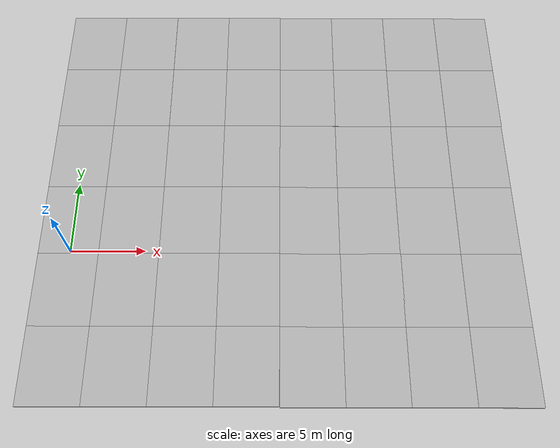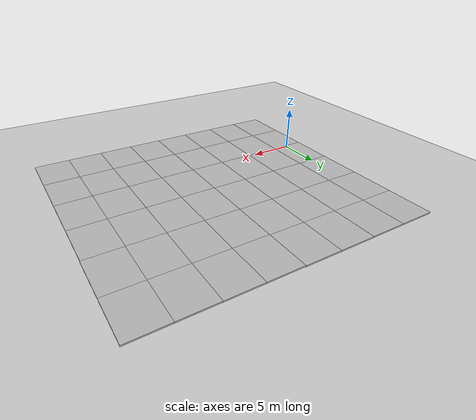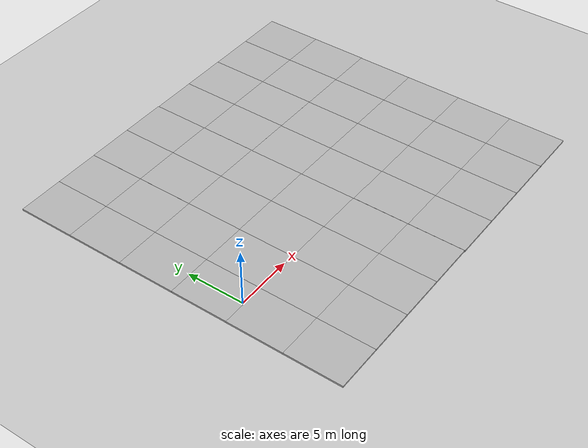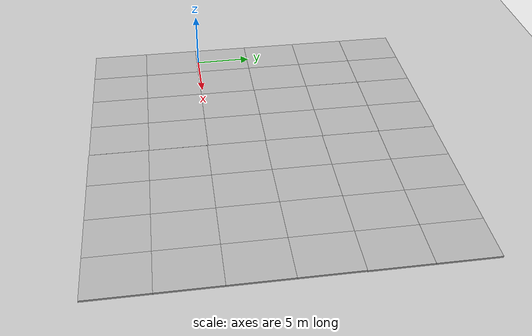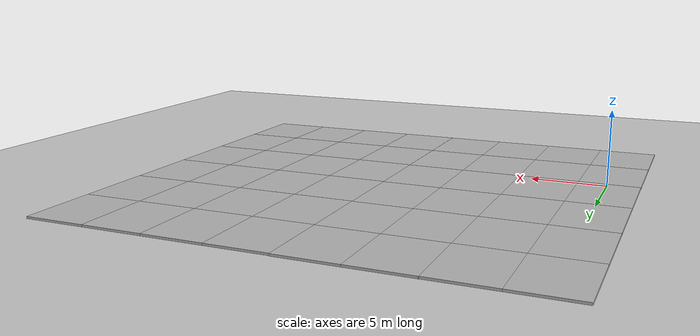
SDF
<sdf version="1.6">
 <world name="default">
  <physics name="1ms" type="ignored">
   <max_step_size>0.001</max_step_size>
   <real_time_factor>1</real_time_factor>
   <real_time_update_rate>1000</real_time_update_rate>
  </physics>
  <magnetic_field>6e-06 2.3e-05 -4.2e-05</magnetic_field>
  <atmosphere type="adiabatic"/>
  <scene><ambient>0.4 0.4 0.4 1</ambient><background>0.7 0.7 0.7 1</background><shadows>false</shadows></scene>
  <light name="sun" type="directional">
   <pose>0 0 10 0 -0 0</pose>
   <cast_shadows>false</cast_shadows>
   <intensity>1</intensity>
   <direction>-0.5 0.1 -0.9</direction>
   <diffuse>0.8 0.8 0.8 1</diffuse>
   <specular>0.2 0.2 0.2 1</specular>
   <attenuation>
    <range>1000</range>
    <linear>0.01</linear>
    <constant>0.90000000000000002</constant>
    <quadratic>0.001</quadratic>
   </attenuation>
   <spot><inner_angle>0</inner_angle><outer_angle>0</outer_angle><falloff>0</falloff></spot>
  </light>
  <model name="ground_plane">
   <static>1</static>
   <link name="link">
    <collision name="collision">
     <geometry><plane><normal>0 0 1</normal><size>100 100</size></plane></geometry>
     <surface><friction><ode><mu>100</mu><mu2>50</mu2></ode></friction></surface>
    </collision>
    <visual name="visual">
     <cast_shadows>0</cast_shadows>
     <geometry><plane><normal>0 0 1</normal><size>100 100</size></plane></geometry>
     <material>
      <script><uri>file://media/materials/scripts/gazebo.material</uri><name>Gazebo/Grey</name></script>
     </material>
    </visual>
   </link>
  </model>
  <gravity>0 0 -9.8</gravity>
  <magnetic_field>6e-06 2.3e-05 -4.2e-05</magnetic_field>
  <atmosphere type="adiabatic"/>
  <physics name="default_physics" default="0" type="ode">
   <max_step_size>0.001</max_step_size>
   <real_time_factor>1</real_time_factor>
   <real_time_update_rate>1000</real_time_update_rate>
  </physics>
  <scene><ambient>0.4 0.4 0.4 1</ambient><background>0.7 0.7 0.7 1</background><shadows>1</shadows></scene>
  <spherical_coordinates>
   <surface_model>EARTH_WGS84</surface_model>
   <latitude_deg>0</latitude_deg>
   <longitude_deg>0</longitude_deg>
   <elevation>0</elevation>
   <heading_deg>0</heading_deg>
  </spherical_coordinates>
  <model name="mud_box">
   <static>1</static>
   <link name="link">
    <collision name="collision"><geometry><box><size>8 10 0.2</size></box></geometry></collision>
    <visual name="visual_1">
     <pose>-2 2.5 0 0 -0 0</pose>
     <cast_shadows>0</cast_shadows>
     <geometry><box><size>4 5 0.2</size></box></geometry>
     <material>
      <script>
       <uri>model://mud_box/materials/scripts</uri>
       <uri>model://mud_box/materials/textures</uri>
       <name>vrc/mud</name>
      </script>
     </material>
    </visual>
    <visual name="visual_2">
     <pose>2 2.5 0 0 -0 0</pose>
     <cast_shadows>0</cast_shadows>
     <geometry><box><size>4 5 0.2</size></box></geometry>
     <material>
      <script>
       <uri>model://mud_box/materials/scripts</uri>
       <uri>model://mud_box/materials/textures</uri>
       <name>vrc/mud</name>
      </script>
     </material>
    </visual>
    <visual name="visual_3">
     <pose>2 -2.5 0 0 -0 0</pose>
     <cast_shadows>0</cast_shadows>
     <geometry><box><size>4 5 0.2</size></box></geometry>
     <material>
      <script>
       <uri>model://mud_box/materials/scripts</uri>
       <uri>model://mud_box/materials/textures</uri>
       <name>vrc/mud</name>
      </script>
     </material>
    </visual>
    <visual name="visual_4">
     <pose>-2 -2.5 0 0 -0 0</pose>
     <cast_shadows>0</cast_shadows>
     <geometry><box><size>4 5 0.2</size></box></geometry>
     <material>
      <script>
       <uri>model://mud_box/materials/scripts</uri>
       <uri>model://mud_box/materials/textures</uri>
       <name>vrc/mud</name>
      </script>
     </material>
    </visual>
   </link>
   <pose>9.86832 14.8407 0 0 -0 0</pose>
  </model>
  <model name="mud_box_0">
   <static>1</static>
   <link name="link">
    <collision name="collision"><geometry><box><size>8 10 0.2</size></box></geometry></collision>
    <visual name="visual_1">
     <pose>-2 2.5 0 0 -0 0</pose>
     <cast_shadows>0</cast_shadows>
     <geometry><box><size>4 5 0.2</size></box></geometry>
     <material>
      <script>
       <uri>model://mud_box/materials/scripts</uri>
       <uri>model://mud_box/materials/textures</uri>
       <name>vrc/mud</name>
      </script>
     </material>
    </visual>
    <visual name="visual_2">
     <pose>2 2.5 0 0 -0 0</pose>
     <cast_shadows>0</cast_shadows>
     <geometry><box><size>4 5 0.2</size></box></geometry>
     <material>
      <script>
       <uri>model://mud_box/materials/scripts</uri>
       <uri>model://mud_box/materials/textures</uri>
       <name>vrc/mud</name>
      </script>
     </material>
    </visual>
    <visual name="visual_3">
     <pose>2 -2.5 0 0 -0 0</pose>
     <cast_shadows>0</cast_shadows>
     <geometry><box><size>4 5 0.2</size></box></geometry>
     <material>
      <script>
       <uri>model://mud_box/materials/scripts</uri>
       <uri>model://mud_box/materials/textures</uri>
       <name>vrc/mud</name>
      </script>
     </material>
    </visual>
    <visual name="visual_4">
     <pose>-2 -2.5 0 0 -0 0</pose>
     <cast_shadows>0</cast_shadows>
     <geometry><box><size>4 5 0.2</size></box></geometry>
     <material>
      <script>
       <uri>model://mud_box/materials/scripts</uri>
       <uri>model://mud_box/materials/textures</uri>
       <name>vrc/mud</name>
      </script>
     </material>
    </visual>
   </link>
   <pose>1.86767 4.83104 0 0 -0 0</pose>
  </model>
  <model name="mud_box_1">
   <static>1</static>
   <link name="link">
    <collision name="collision"><geometry><box><size>8 10 0.2</size></box></geometry></collision>
    <visual name="visual_1">
     <pose>-2 2.5 0 0 -0 0</pose>
     <cast_shadows>0</cast_shadows>
     <geometry><box><size>4 5 0.2</size></box></geometry>
     <material>
      <script>
       <uri>model://mud_box/materials/scripts</uri>
       <uri>model://mud_box/materials/textures</uri>
       <name>vrc/mud</name>
      </script>
     </material>
    </visual>
    <visual name="visual_2">
     <pose>2 2.5 0 0 -0 0</pose>
     <cast_shadows>0</cast_shadows>
     <geometry><box><size>4 5 0.2</size></box></geometry>
     <material>
      <script>
       <uri>model://mud_box/materials/scripts</uri>
       <uri>model://mud_box/materials/textures</uri>
       <name>vrc/mud</name>
      </script>
     </material>
    </visual>
    <visual name="visual_3">
     <pose>2 -2.5 0 0 -0 0</pose>
     <cast_shadows>0</cast_shadows>
     <geometry><box><size>4 5 0.2</size></box></geometry>
     <material>
      <script>
       <uri>model://mud_box/materials/scripts</uri>
       <uri>model://mud_box/materials/textures</uri>
       <name>vrc/mud</name>
      </script>
     </material>
    </visual>
    <visual name="visual_4">
     <pose>-2 -2.5 0 0 -0 0</pose>
     <cast_shadows>0</cast_shadows>
     <geometry><box><size>4 5 0.2</size></box></geometry>
     <material>
      <script>
       <uri>model://mud_box/materials/scripts</uri>
       <uri>model://mud_box/materials/textures</uri>
       <name>vrc/mud</name>
      </script>
     </material>
    </visual>
   </link>
   <pose>25.8304 -5.18145 0 0 -0 0</pose>
  </model>
  <model name="mud_box_2">
   <static>1</static>
   <link name="link">
    <collision name="collision"><geometry><box><size>8 10 0.2</size></box></geometry></collision>
    <visual name="visual_1">
     <pose>-2 2.5 0 0 -0 0</pose>
     <cast_shadows>0</cast_shadows>
     <geometry><box><size>4 5 0.2</size></box></geometry>
     <material>
      <script>
       <uri>model://mud_box/materials/scripts</uri>
       <uri>model://mud_box/materials/textures</uri>
       <name>vrc/mud</name>
      </script>
     </material>
    </visual>
    <visual name="visual_2">
     <pose>2 2.5 0 0 -0 0</pose>
     <cast_shadows>0</cast_shadows>
     <geometry><box><size>4 5 0.2</size></box></geometry>
     <material>
      <script>
       <uri>model://mud_box/materials/scripts</uri>
       <uri>model://mud_box/materials/textures</uri>
       <name>vrc/mud</name>
      </script>
     </material>
    </visual>
    <visual name="visual_3">
     <pose>2 -2.5 0 0 -0 0</pose>
     <cast_shadows>0</cast_shadows>
     <geometry><box><size>4 5 0.2</size></box></geometry>
     <material>
      <script>
       <uri>model://mud_box/materials/scripts</uri>
       <uri>model://mud_box/materials/textures</uri>
       <name>vrc/mud</name>
      </script>
     </material>
    </visual>
    <visual name="visual_4">
     <pose>-2 -2.5 0 0 -0 0</pose>
     <cast_shadows>0</cast_shadows>
     <geometry><box><size>4 5 0.2</size></box></geometry>
     <material>
      <script>
       <uri>model://mud_box/materials/scripts</uri>
       <uri>model://mud_box/materials/textures</uri>
       <name>vrc/mud</name>
      </script>
     </material>
    </visual>
   </link>
   <pose>1.85975 -5.14192 0 0 -0 0</pose>
  </model>
  <model name="mud_box_0_clone">
   <static>1</static>
   <link name="link">
    <collision name="collision"><geometry><box><size>8 10 0.2</size></box></geometry></collision>
    <visual name="visual_1">
     <pose>-2 2.5 0 0 -0 0</pose>
     <cast_shadows>0</cast_shadows>
     <geometry><box><size>4 5 0.2</size></box></geometry>
     <material>
      <script>
       <uri>model://mud_box/materials/scripts</uri>
       <uri>model://mud_box/materials/textures</uri>
       <name>vrc/mud</name>
      </script>
     </material>
    </visual>
    <visual name="visual_2">
     <pose>2 2.5 0 0 -0 0</pose>
     <cast_shadows>0</cast_shadows>
     <geometry><box><size>4 5 0.2</size></box></geometry>
     <material>
      <script>
       <uri>model://mud_box/materials/scripts</uri>
       <uri>model://mud_box/materials/textures</uri>
       <name>vrc/mud</name>
      </script>
     </material>
    </visual>
    <visual name="visual_3">
     <pose>2 -2.5 0 0 -0 0</pose>
     <cast_shadows>0</cast_shadows>
     <geometry><box><size>4 5 0.2</size></box></geometry>
     <material>
      <script>
       <uri>model://mud_box/materials/scripts</uri>
       <uri>model://mud_box/materials/textures</uri>
       <name>vrc/mud</name>
      </script>
     </material>
    </visual>
    <visual name="visual_4">
     <pose>-2 -2.5 0 0 -0 0</pose>
     <cast_shadows>0</cast_shadows>
     <geometry><box><size>4 5 0.2</size></box></geometry>
     <material>
      <script>
       <uri>model://mud_box/materials/scripts</uri>
       <uri>model://mud_box/materials/textures</uri>
       <name>vrc/mud</name>
      </script>
     </material>
    </visual>
   </link>
   <pose>9.85757 -5.14216 0 0 -0 0</pose>
  </model>
  <model name="mud_box_0_clone_clone">
   <static>1</static>
   <link name="link">
    <collision name="collision"><geometry><box><size>8 10 0.2</size></box></geometry></collision>
    <visual name="visual_1">
     <pose>-2 2.5 0 0 -0 0</pose>
     <cast_shadows>0</cast_shadows>
     <geometry><box><size>4 5 0.2</size></box></geometry>
     <material>
      <script>
       <uri>model://mud_box/materials/scripts</uri>
       <uri>model://mud_box/materials/textures</uri>
       <name>vrc/mud</name>
      </script>
     </material>
    </visual>
    <visual name="visual_2">
     <pose>2 2.5 0 0 -0 0</pose>
     <cast_shadows>0</cast_shadows>
     <geometry><box><size>4 5 0.2</size></box></geometry>
     <material>
      <script>
       <uri>model://mud_box/materials/scripts</uri>
       <uri>model://mud_box/materials/textures</uri>
       <name>vrc/mud</name>
      </script>
     </material>
    </visual>
    <visual name="visual_3">
     <pose>2 -2.5 0 0 -0 0</pose>
     <cast_shadows>0</cast_shadows>
     <geometry><box><size>4 5 0.2</size></box></geometry>
     <material>
      <script>
       <uri>model://mud_box/materials/scripts</uri>
       <uri>model://mud_box/materials/textures</uri>
       <name>vrc/mud</name>
      </script>
     </material>
    </visual>
    <visual name="visual_4">
     <pose>-2 -2.5 0 0 -0 0</pose>
     <cast_shadows>0</cast_shadows>
     <geometry><box><size>4 5 0.2</size></box></geometry>
     <material>
      <script>
       <uri>model://mud_box/materials/scripts</uri>
       <uri>model://mud_box/materials/textures</uri>
       <name>vrc/mud</name>
      </script>
     </material>
    </visual>
   </link>
   <pose>17.8643 -5.17973 0 0 -0 0</pose>
  </model>
  <model name="mud_box_0_clone_clone_0">
   <static>1</static>
   <link name="link">
    <collision name="collision"><geometry><box><size>8 10 0.2</size></box></geometry></collision>
    <visual name="visual_1">
     <pose>-2 2.5 0 0 -0 0</pose>
     <cast_shadows>0</cast_shadows>
     <geometry><box><size>4 5 0.2</size></box></geometry>
     <material>
      <script>
       <uri>model://mud_box/materials/scripts</uri>
       <uri>model://mud_box/materials/textures</uri>
       <name>vrc/mud</name>
      </script>
     </material>
    </visual>
    <visual name="visual_2">
     <pose>2 2.5 0 0 -0 0</pose>
     <cast_shadows>0</cast_shadows>
     <geometry><box><size>4 5 0.2</size></box></geometry>
     <material>
      <script>
       <uri>model://mud_box/materials/scripts</uri>
       <uri>model://mud_box/materials/textures</uri>
       <name>vrc/mud</name>
      </script>
     </material>
    </visual>
    <visual name="visual_3">
     <pose>2 -2.5 0 0 -0 0</pose>
     <cast_shadows>0</cast_shadows>
     <geometry><box><size>4 5 0.2</size></box></geometry>
     <material>
      <script>
       <uri>model://mud_box/materials/scripts</uri>
       <uri>model://mud_box/materials/textures</uri>
       <name>vrc/mud</name>
      </script>
     </material>
    </visual>
    <visual name="visual_4">
     <pose>-2 -2.5 0 0 -0 0</pose>
     <cast_shadows>0</cast_shadows>
     <geometry><box><size>4 5 0.2</size></box></geometry>
     <material>
      <script>
       <uri>model://mud_box/materials/scripts</uri>
       <uri>model://mud_box/materials/textures</uri>
       <name>vrc/mud</name>
      </script>
     </material>
    </visual>
   </link>
   <pose>17.8432 4.79546 0 0 -0 0</pose>
  </model>
  <model name="mud_box_0_clone_clone_1">
   <static>1</static>
   <link name="link">
    <collision name="collision"><geometry><box><size>8 10 0.2</size></box></geometry></collision>
    <visual name="visual_1">
     <pose>-2 2.5 0 0 -0 0</pose>
     <cast_shadows>0</cast_shadows>
     <geometry><box><size>4 5 0.2</size></box></geometry>
     <material>
      <script>
       <uri>model://mud_box/materials/scripts</uri>
       <uri>model://mud_box/materials/textures</uri>
       <name>vrc/mud</name>
      </script>
     </material>
    </visual>
    <visual name="visual_2">
     <pose>2 2.5 0 0 -0 0</pose>
     <cast_shadows>0</cast_shadows>
     <geometry><box><size>4 5 0.2</size></box></geometry>
     <material>
      <script>
       <uri>model://mud_box/materials/scripts</uri>
       <uri>model://mud_box/materials/textures</uri>
       <name>vrc/mud</name>
      </script>
     </material>
    </visual>
    <visual name="visual_3">
     <pose>2 -2.5 0 0 -0 0</pose>
     <cast_shadows>0</cast_shadows>
     <geometry><box><size>4 5 0.2</size></box></geometry>
     <material>
      <script>
       <uri>model://mud_box/materials/scripts</uri>
       <uri>model://mud_box/materials/textures</uri>
       <name>vrc/mud</name>
      </script>
     </material>
    </visual>
    <visual name="visual_4">
     <pose>-2 -2.5 0 0 -0 0</pose>
     <cast_shadows>0</cast_shadows>
     <geometry><box><size>4 5 0.2</size></box></geometry>
     <material>
      <script>
       <uri>model://mud_box/materials/scripts</uri>
       <uri>model://mud_box/materials/textures</uri>
       <name>vrc/mud</name>
      </script>
     </material>
    </visual>
   </link>
   <pose>25.8322 4.79818 0 0 -0 0</pose>
  </model>
  <model name="mud_box_0_clone_clone_2">
   <static>1</static>
   <link name="link">
    <collision name="collision"><geometry><box><size>8 10 0.2</size></box></geometry></collision>
    <visual name="visual_1">
     <pose>-2 2.5 0 0 -0 0</pose>
     <cast_shadows>0</cast_shadows>
     <geometry><box><size>4 5 0.2</size></box></geometry>
     <material>
      <script>
       <uri>model://mud_box/materials/scripts</uri>
       <uri>model://mud_box/materials/textures</uri>
       <name>vrc/mud</name>
      </script>
     </material>
    </visual>
    <visual name="visual_2">
     <pose>2 2.5 0 0 -0 0</pose>
     <cast_shadows>0</cast_shadows>
     <geometry><box><size>4 5 0.2</size></box></geometry>
     <material>
      <script>
       <uri>model://mud_box/materials/scripts</uri>
       <uri>model://mud_box/materials/textures</uri>
       <name>vrc/mud</name>
      </script>
     </material>
    </visual>
    <visual name="visual_3">
     <pose>2 -2.5 0 0 -0 0</pose>
     <cast_shadows>0</cast_shadows>
     <geometry><box><size>4 5 0.2</size></box></geometry>
     <material>
      <script>
       <uri>model://mud_box/materials/scripts</uri>
       <uri>model://mud_box/materials/textures</uri>
       <name>vrc/mud</name>
      </script>
     </material>
    </visual>
    <visual name="visual_4">
     <pose>-2 -2.5 0 0 -0 0</pose>
     <cast_shadows>0</cast_shadows>
     <geometry><box><size>4 5 0.2</size></box></geometry>
     <material>
      <script>
       <uri>model://mud_box/materials/scripts</uri>
       <uri>model://mud_box/materials/textures</uri>
       <name>vrc/mud</name>
      </script>
     </material>
    </visual>
   </link>
   <pose>1.86503 14.8262 0 0 -0 0</pose>
  </model>
  <model name="mud_box_4">
   <static>1</static>
   <link name="link">
    <collision name="collision"><geometry><box><size>8 10 0.2</size></box></geometry></collision>
    <visual name="visual_1">
     <pose>-2 2.5 0 0 -0 0</pose>
     <cast_shadows>0</cast_shadows>
     <geometry><box><size>4 5 0.2</size></box></geometry>
     <material>
      <script>
       <uri>model://mud_box/materials/scripts</uri>
       <uri>model://mud_box/materials/textures</uri>
       <name>vrc/mud</name>
      </script>
     </material>
    </visual>
    <visual name="visual_2">
     <pose>2 2.5 0 0 -0 0</pose>
     <cast_shadows>0</cast_shadows>
     <geometry><box><size>4 5 0.2</size></box></geometry>
     <material>
      <script>
       <uri>model://mud_box/materials/scripts</uri>
       <uri>model://mud_box/materials/textures</uri>
       <name>vrc/mud</name>
      </script>
     </material>
    </visual>
    <visual name="visual_3">
     <pose>2 -2.5 0 0 -0 0</pose>
     <cast_shadows>0</cast_shadows>
     <geometry><box><size>4 5 0.2</size></box></geometry>
     <material>
      <script>
       <uri>model://mud_box/materials/scripts</uri>
       <uri>model://mud_box/materials/textures</uri>
       <name>vrc/mud</name>
      </script>
     </material>
    </visual>
    <visual name="visual_4">
     <pose>-2 -2.5 0 0 -0 0</pose>
     <cast_shadows>0</cast_shadows>
     <geometry><box><size>4 5 0.2</size></box></geometry>
     <material>
      <script>
       <uri>model://mud_box/materials/scripts</uri>
       <uri>model://mud_box/materials/textures</uri>
       <name>vrc/mud</name>
      </script>
     </material>
    </visual>
   </link>
   <pose>9.86465 4.85433 0 0 -0 0</pose>
  </model>
  <model name="mud_box_3">
   <static>1</static>
   <link name="link">
    <collision name="collision"><geometry><box><size>8 10 0.2</size></box></geometry></collision>
    <visual name="visual_1">
     <pose>-2 2.5 0 0 -0 0</pose>
     <cast_shadows>0</cast_shadows>
     <geometry><box><size>4 5 0.2</size></box></geometry>
     <material>
      <script>
       <uri>model://mud_box/materials/scripts</uri>
       <uri>model://mud_box/materials/textures</uri>
       <name>vrc/mud</name>
      </script>
     </material>
    </visual>
    <visual name="visual_2">
     <pose>2 2.5 0 0 -0 0</pose>
     <cast_shadows>0</cast_shadows>
     <geometry><box><size>4 5 0.2</size></box></geometry>
     <material>
      <script>
       <uri>model://mud_box/materials/scripts</uri>
       <uri>model://mud_box/materials/textures</uri>
       <name>vrc/mud</name>
      </script>
     </material>
    </visual>
    <visual name="visual_3">
     <pose>2 -2.5 0 0 -0 0</pose>
     <cast_shadows>0</cast_shadows>
     <geometry><box><size>4 5 0.2</size></box></geometry>
     <material>
      <script>
       <uri>model://mud_box/materials/scripts</uri>
       <uri>model://mud_box/materials/textures</uri>
       <name>vrc/mud</name>
      </script>
     </material>
    </visual>
    <visual name="visual_4">
     <pose>-2 -2.5 0 0 -0 0</pose>
     <cast_shadows>0</cast_shadows>
     <geometry><box><size>4 5 0.2</size></box></geometry>
     <material>
      <script>
       <uri>model://mud_box/materials/scripts</uri>
       <uri>model://mud_box/materials/textures</uri>
       <name>vrc/mud</name>
      </script>
     </material>
    </visual>
   </link>
   <pose>17.8698 14.7961 0 0 -0 0</pose>
  </model>
  <model name="mud_box_5">
   <static>1</static>
   <link name="link">
    <collision name="collision"><geometry><box><size>8 10 0.2</size></box></geometry></collision>
    <visual name="visual_1">
     <pose>-2 2.5 0 0 -0 0</pose>
     <cast_shadows>0</cast_shadows>
     <geometry><box><size>4 5 0.2</size></box></geometry>
     <material>
      <script>
       <uri>model://mud_box/materials/scripts</uri>
       <uri>model://mud_box/materials/textures</uri>
       <name>vrc/mud</name>
      </script>
     </material>
    </visual>
    <visual name="visual_2">
     <pose>2 2.5 0 0 -0 0</pose>
     <cast_shadows>0</cast_shadows>
     <geometry><box><size>4 5 0.2</size></box></geometry>
     <material>
      <script>
       <uri>model://mud_box/materials/scripts</uri>
       <uri>model://mud_box/materials/textures</uri>
       <name>vrc/mud</name>
      </script>
     </material>
    </visual>
    <visual name="visual_3">
     <pose>2 -2.5 0 0 -0 0</pose>
     <cast_shadows>0</cast_shadows>
     <geometry><box><size>4 5 0.2</size></box></geometry>
     <material>
      <script>
       <uri>model://mud_box/materials/scripts</uri>
       <uri>model://mud_box/materials/textures</uri>
       <name>vrc/mud</name>
      </script>
     </material>
    </visual>
    <visual name="visual_4">
     <pose>-2 -2.5 0 0 -0 0</pose>
     <cast_shadows>0</cast_shadows>
     <geometry><box><size>4 5 0.2</size></box></geometry>
     <material>
      <script>
       <uri>model://mud_box/materials/scripts</uri>
       <uri>model://mud_box/materials/textures</uri>
       <name>vrc/mud</name>
      </script>
     </material>
    </visual>
   </link>
   <pose>25.863 14.7854 0 0 -0 0</pose>
  </model>
 </world>
</sdf>
